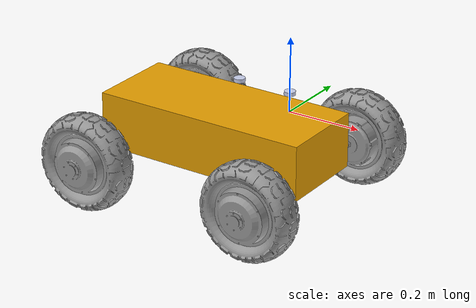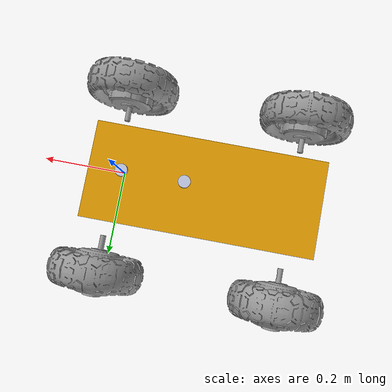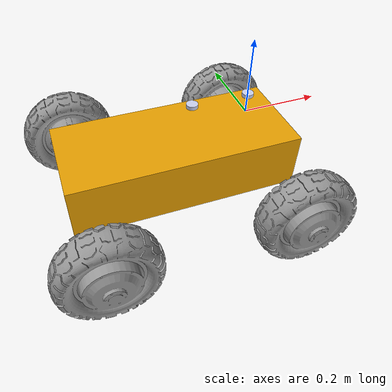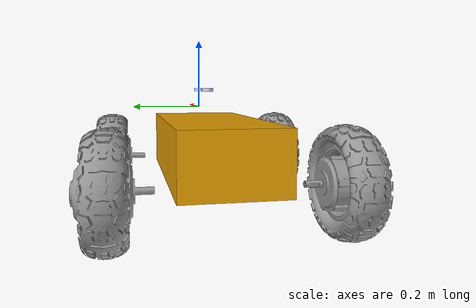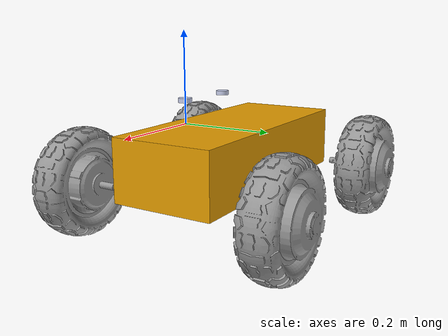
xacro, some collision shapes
<?xml version="1.0"?>
<robot xmlns:xacro="http://www.ros.org/wiki/xacro"  name="robot">

    <xacro:arg name="use_ros2_control" default="true"/>
    <xacro:arg name="sim_mode" default="false"/>

    <xacro:include filename="movil.xacro" />

    <xacro:include filename="ros2_control_vels.xacro" />

    <xacro:include filename="gps.xacro" />

    <xacro:include filename="imu.xacro" />

</robot>

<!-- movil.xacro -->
<robot xmlns:xacro="http://www.ros.org/wiki/xacro" >

    <material name="black"><color rgba="0 0 0 1"/></material>

    <link name="chasis">
        <inertial>
            <origin xyz="-0.157847 -0.000989 -0.068034" rpy="0 0 0" />
            <mass value="18.136" />
            <inertia ixx="0.127" ixy="0.001" ixz="0.015" iyy="0.318" iyz="0" izz="0.329" />
        </inertial>
        <visual><geometry><mesh filename="file://$(find mmdt_ros2)/meshes/chasis.STL" /></geometry></visual>
        <collision><origin xyz="-0.2 0 -0.1"/><geometry><box size="0.6 0.25 0.15"/></geometry></collision>
    </link>

    <link name="rueda1">
        <inertial>
            <origin xyz="-0.000001 0.10103 -0.000002" rpy="0 0 0" />
            <mass value="2.2464" />
            <inertia ixx="0.008" ixy="0" ixz="0" iyy="0.011" iyz="0" izz="0.008" />
        </inertial>
        <visual><geometry><mesh filename="file://$(find mmdt_ros2)/meshes/rueda1.STL" /></geometry></visual>
        <collision><origin xyz="0 0.1 0" rpy="1.57 0 0" /><geometry><cylinder length="0.06" radius="0.13"/></geometry></collision>
    </link>
    <joint name="ejeRueda_FI" type="continuous">
        <origin xyz="0.054 0.1651 -0.1548" /><parent link="chasis" /><child link="rueda1" /><axis xyz="0 1 0" />
        <limit effort="1000" velocity="20.0"/><dynamics damping="0.7" friction="0.1" />
    </joint>

    <link name="rueda2">
        <inertial>
            <origin xyz="0.000001 -0.10103 -0.000002" rpy="0 0 0" />
            <mass value="2.2464" />
            <inertia ixx="0.008" ixy="0" ixz="0" iyy="0.011" iyz="0" izz="0.008" />
        </inertial>
        <visual><geometry><mesh filename="file://$(find mmdt_ros2)/meshes/rueda2.STL" /></geometry></visual>
        <collision><origin xyz="0 -0.1 0" rpy="1.57 0 0" /><geometry><cylinder length="0.06" radius="0.13"/></geometry></collision>
    </link>
    <joint name="ejeRueda_FD" type="continuous">
        <origin xyz="0.054 -0.1651 -0.1548" /><parent link="chasis" /><child link="rueda2" /><axis xyz="0 1 0" />
        <limit effort="1000" velocity="20.0"/><dynamics damping="0.7" friction="0.1" />
    </joint>

    <link name="rueda3">
        <inertial>
            <origin xyz="-0.000001 0.10103 -0.000002" rpy="0 0 0" />
            <mass value="2.2464" />
            <inertia ixx="0.008" ixy="0" ixz="0" iyy="0.011" iyz="0" izz="0.008" />
        </inertial>
        <visual><geometry><mesh filename="file://$(find mmdt_ros2)/meshes/rueda3.STL" /></geometry></visual>
        <collision><origin xyz="0 0.1 0" rpy="1.57 0 0" /><geometry><cylinder length="0.06" radius="0.13"/></geometry></collision>
    </link>
    <joint name="ejeRueda_TI" type="continuous">
        <origin xyz="-0.446 0.1651 -0.1548" /><parent link="chasis" /><child link="rueda3" /><axis xyz="0 1 0" />
        <limit effort="1000" velocity="20.0"/><dynamics damping="0.7" friction="0.1" />
    </joint>

    <link name="rueda4">
        <inertial>
            <origin xyz="0.000001 -0.10103 -0.000002" rpy="0 0 0" />
            <mass value="2.2464" />
            <inertia ixx="0.008" ixy="0" ixz="0" iyy="0.011" iyz="0" izz="0.008" />
        </inertial>
        <visual><geometry><mesh filename="file://$(find mmdt_ros2)/meshes/rueda4.STL" /></geometry></visual>
        <collision><origin xyz="0 -0.1 0" rpy="1.57 0 0" /><geometry><cylinder length="0.06" radius="0.13"/></geometry></collision>
    </link>
    <joint name="ejeRueda_TD" type="continuous">
        <origin xyz="-0.446 -0.1651 -0.155" /><parent link="chasis" /><child link="rueda4" /><axis xyz="0 1 0" />
        <limit effort="1000" velocity="20.0"/><dynamics damping="0.7" friction="0.1" />
    </joint>

    <transmission name="ejeRueda_FI_transmission"><type>transmission_interface/SimpleTransmission</type><joint name="ejeRueda_FI"><hardwareInterface>hardware_interface/VelocityJointInterface</hardwareInterface></joint><actuator name="ejeRueda_FI_motor"><hardwareInterface>hardware_interface/VelocityJointInterface</hardwareInterface></actuator></transmission>
    <transmission name="ejeRueda_FD_transmission"><type>transmission_interface/SimpleTransmission</type><joint name="ejeRueda_FD"><hardwareInterface>hardware_interface/VelocityJointInterface</hardwareInterface></joint><actuator name="ejeRueda_FD_motor"><hardwareInterface>hardware_interface/VelocityJointInterface</hardwareInterface></actuator></transmission>
    <transmission name="ejeRueda_TI_transmission"><type>transmission_interface/SimpleTransmission</type><joint name="ejeRueda_TI"><hardwareInterface>hardware_interface/VelocityJointInterface</hardwareInterface></joint><actuator name="ejeRueda_TI_motor"><hardwareInterface>hardware_interface/VelocityJointInterface</hardwareInterface></actuator></transmission>
    <transmission name="ejeRueda_TD_transmission"><type>transmission_interface/SimpleTransmission</type><joint name="ejeRueda_TD"><hardwareInterface>hardware_interface/VelocityJointInterface</hardwareInterface></joint><actuator name="ejeRueda_TD_motor"><hardwareInterface>hardware_interface/VelocityJointInterface</hardwareInterface></actuator></transmission>

    <gazebo reference="rueda1">
        <mu1>0.5</mu1> <mu2>0.5</mu2> <kp>10000000.0</kp> <kd>1.0</kd>   <minDepth>0.001</minDepth> <maxVel>0.1</maxVel> <material>Gazebo/Grey</material>
    </gazebo>
    <gazebo reference="rueda2">
        <mu1>0.5</mu1> <mu2>0.5</mu2> <kp>10000000.0</kp> <kd>1.0</kd>   <minDepth>0.001</minDepth> <maxVel>0.1</maxVel> <material>Gazebo/Grey</material>
    </gazebo>
    <gazebo reference="rueda3">
        <mu1>0.5</mu1> <mu2>0.5</mu2> <kp>10000000.0</kp> <kd>1.0</kd>   <minDepth>0.001</minDepth> <maxVel>0.1</maxVel> <material>Gazebo/Grey</material>
    </gazebo>
    <gazebo reference="rueda4">
        <mu1>0.5</mu1> <mu2>0.5</mu2> <kp>10000000.0</kp> <kd>1.0</kd>   <minDepth>0.001</minDepth> <maxVel>0.1</maxVel> <material>Gazebo/Grey</material>
    </gazebo>

</robot>

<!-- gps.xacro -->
<robot xmlns:xacro="http://www.ros.org/wiki/xacro" >

<link
  name="gps_link">
  <inertial>
    <origin
      xyz="0 0 0"
      rpy="0 0 0" />
    <mass
      value="0.0070686" />
    <inertia
      ixx="4.5651E-07"
      ixy="4.6312E-37"
      ixz="-3.2701E-21"
      iyy="4.5651E-07"
      iyz="3.0522E-23"
      izz="7.9522E-07" />
  </inertial>
  <visual>
    <origin
      xyz="0 0 0"
      rpy="0 0 0" />
    <geometry>
      <mesh
        filename="file://$(find mmdt_ros2)/meshes/imu.STL" />
    </geometry>
    <material
      name="">
      <color
        rgba="0.79216 0.81961 0.93333 1" />
    </material>
  </visual>
  <collision>
    <origin
      xyz="0 0 0"
      rpy="0 0 0" />
    <geometry>
      <mesh
        filename="file://$(find mmdt_ros2)/meshes/imu.STL" />
    </geometry>
  </collision>
</link>

<joint
  name="eje_gps"
  type="fixed">
    <origin
    xyz="0.0 0 0.052"
    rpy="0 0 0" />
  <parent
    link="chasis" />
  <child
    link="gps_link" />
  <axis
    xyz="0 0 0" />
</joint>

  <gazebo reference="gps_link">
    <sensor name="tb3_gps" type="gps">
          <always_on>true</always_on>
          <update_rate>10</update_rate>
          <pose>0 0 0 0 0 0</pose>
          <gps>
            <position_sensing>
              <horizontal>
                <noise type="gaussian">
                  <mean>0.0</mean>
                  <stddev>0.001</stddev>
                </noise>
              </horizontal>
              <vertical>
                <noise type="gaussian">
                  <mean>0.0</mean>
                  <stddev>0.001</stddev>
                </noise>
              </vertical>
            </position_sensing>
          </gps>
          <plugin name="my_gps_plugin" filename="libgazebo_ros_gps_sensor.so">
            <ros>
              <remapping>~/out:=/gps/fix</remapping>
            </ros>
          </plugin>
    </sensor>
  </gazebo>

</robot>

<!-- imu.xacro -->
<robot xmlns:xacro="http://www.ros.org/wiki/xacro" >

<link
  name="imu_link">
  <inertial>
    <origin
      xyz="0 6.1424E-20 0"
      rpy="0 0 0" />
    <mass
      value="0.0070686" />
    <inertia
      ixx="4.5651E-07"
      ixy="4.6312E-37"
      ixz="-3.2701E-21"
      iyy="4.5651E-07"
      iyz="3.0522E-23"
      izz="7.9522E-07" />
  </inertial>
  <visual>
    <origin
      xyz="0 0 0"
      rpy="0 0 0" />
    <geometry>
      <mesh
        filename="file://$(find mmdt_ros2)/meshes/imu.STL" />
    </geometry>
    <material
      name="">
      <color
        rgba="0.79216 0.81961 0.93333 1" />
    </material>
  </visual>
  <collision>
    <origin
      xyz="0 0 0"
      rpy="0 0 0" />
    <geometry>
      <mesh
        filename="file://$(find mmdt_ros2)/meshes/imu.STL" />
    </geometry>
  </collision>
</link>

<joint
  name="eje_imu"
  type="fixed">
  <origin
    xyz="-0.152 0 0.052"
    rpy="0 0 0" />
  <parent
    link="chasis" />
  <child
    link="imu_link" />
  <axis
    xyz="0 0 0" />
</joint>

  <gazebo reference="imu_link">
    <gravity>true</gravity>
    <sensor name="imu_sensor" type="imu">
      <always_on>true</always_on>
      <update_rate>100</update_rate>
      <visualize>true</visualize>
      <topic>__default_topic__</topic>
      <plugin filename="libgazebo_ros_imu_sensor.so" name="imu_plugin">
        <topicName>imu</topicName>
        <bodyName>imu_link</bodyName>
        <updateRateHZ>10.0</updateRateHZ>
        <gaussianNoise>0.0</gaussianNoise>
        <xyzOffset>0 0 0</xyzOffset>
        <rpyOffset>0 0 0</rpyOffset>
        <frameName>imu_link</frameName>
        <initialOrientationAsReference>false</initialOrientationAsReference>
      </plugin>
      <pose>0 0 0 0 0 0</pose>
    </sensor>
  </gazebo>

</robot>
